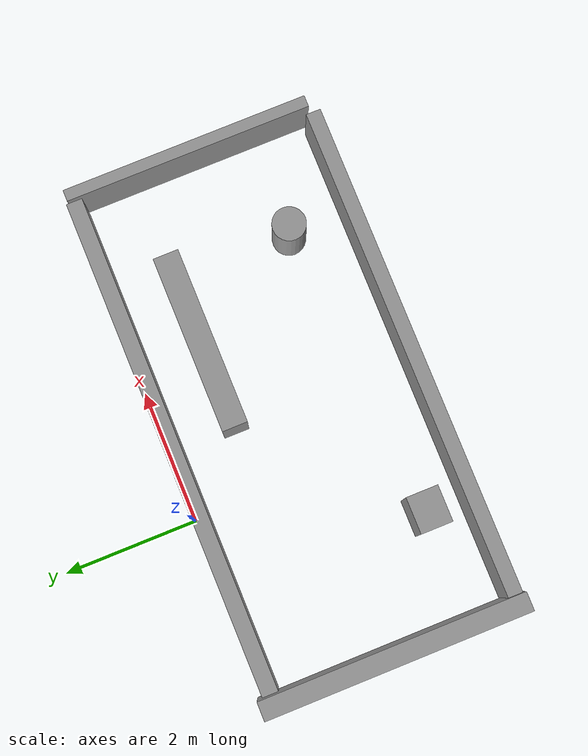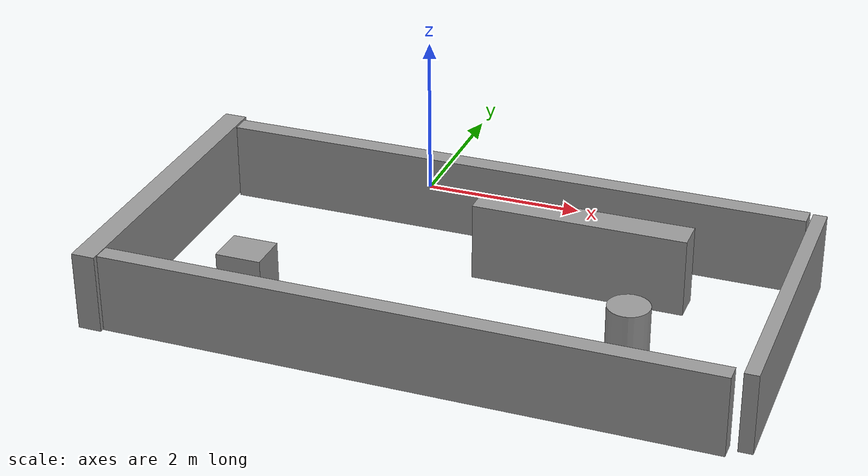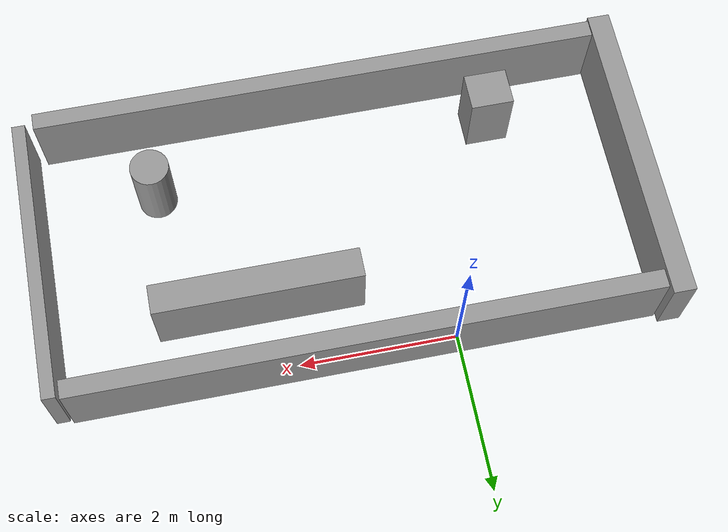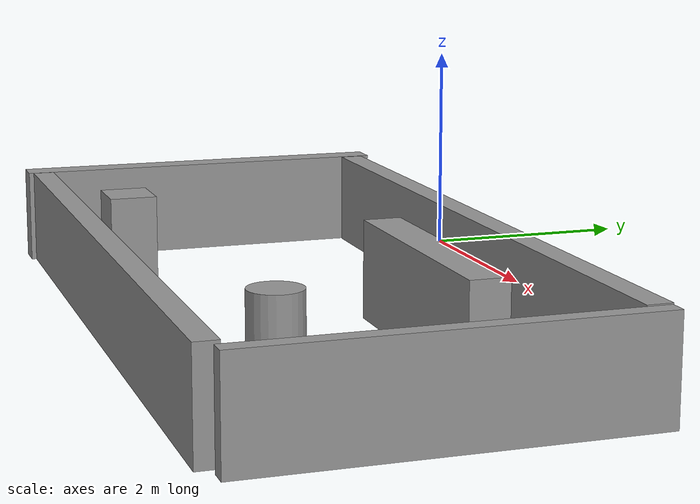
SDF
<?xml version='1.0'?>
<sdf version='1.7'>
  <model name='ysolve_bot_world'>
    <link name='link'>
      <inertial>
        <mass>1.68528</mass>
        <inertia>
          <ixx>0.147466</ixx>
          <ixy>0</ixy>
          <ixz>0</ixz>
          <iyy>8.11562</iyy>
          <iyz>0</iyz>
          <izz>7.9822</izz>
        </inertia>
        <pose>0 0 0 0 -0 0</pose>
      </inertial>
      <self_collide>0</self_collide>
      <enable_wind>0</enable_wind>
      <kinematic>0</kinematic>
      <pose>1.09176 -3.7966 -0 0 -0 0</pose>
      <gravity>0</gravity>
      <visual name='visual'>
        <geometry>
          <box>
            <size>7.53572 0.223666 1</size>
          </box>
        </geometry>
        <material>
          <script>
            <name>Gazebo/Grey</name>
            <uri>file://media/materials/scripts/gazebo.material</uri>
          </script>
          <shader type='pixel'>
            <normal_map>__default__</normal_map>
          </shader>
          <ambient>0.3 0.3 0.3 1</ambient>
          <diffuse>0.7 0.7 0.7 1</diffuse>
          <specular>0.01 0.01 0.01 1</specular>
          <emissive>0 0 0 1</emissive>
        </material>
        <pose>0 0 0 0 -0 0</pose>
        <transparency>0</transparency>
        <cast_shadows>1</cast_shadows>
      </visual>
      <collision name='collision'>
        <laser_retro>0</laser_retro>
        <max_contacts>10</max_contacts>
        <pose>0 0 0 0 -0 0</pose>
        <geometry>
          <box>
            <size>7.53572 0.223666 1</size>
          </box>
        </geometry>
        <surface>
          <friction>
            <ode>
              <mu>1</mu>
              <mu2>1</mu2>
              <fdir1>0 0 0</fdir1>
              <slip1>0</slip1>
              <slip2>0</slip2>
            </ode>
            <torsional>
              <coefficient>1</coefficient>
              <patch_radius>0</patch_radius>
              <surface_radius>0</surface_radius>
              <use_patch_radius>1</use_patch_radius>
              <ode>
                <slip>0</slip>
              </ode>
            </torsional>
          </friction>
          <bounce>
            <restitution_coefficient>0</restitution_coefficient>
            <threshold>1e+06</threshold>
          </bounce>
          <contact>
            <collide_without_contact>0</collide_without_contact>
            <collide_without_contact_bitmask>1</collide_without_contact_bitmask>
            <collide_bitmask>1</collide_bitmask>
            <ode>
              <soft_cfm>0</soft_cfm>
              <soft_erp>0.2</soft_erp>
              <kp>1e+13</kp>
              <kd>1</kd>
              <max_vel>0.01</max_vel>
              <min_depth>0</min_depth>
            </ode>
            <bullet>
              <split_impulse>1</split_impulse>
              <split_impulse_penetration_threshold>-0.01</split_impulse_penetration_threshold>
              <soft_cfm>0</soft_cfm>
              <soft_erp>0.2</soft_erp>
              <kp>1e+13</kp>
              <kd>1</kd>
            </bullet>
          </contact>
        </surface>
      </collision>
    </link>
    <link name='link_0'>
      <inertial>
        <mass>1.20569</mass>
        <inertia>
          <ixx>1.77707</ixx>
          <ixy>0</ixy>
          <ixz>0</ixz>
          <iyy>0.109226</iyy>
          <iyz>0</iyz>
          <izz>1.68535</izz>
        </inertia>
        <pose>0 0 0 0 -0 0</pose>
      </inertial>
      <pose>-2.83232 -1.91567 0 0 -0 0</pose>
      <gravity>0</gravity>
      <self_collide>0</self_collide>
      <kinematic>0</kinematic>
      <enable_wind>0</enable_wind>
      <visual name='visual'>
        <pose>0 0 0 0 -0 0</pose>
        <geometry>
          <box>
            <size>0.295132 4.08495 1</size>
          </box>
        </geometry>
        <material>
          <lighting>1</lighting>
          <script>
            <uri>file://media/materials/scripts/gazebo.material</uri>
            <name>Gazebo/Grey</name>
          </script>
          <shader type='pixel'>
            <normal_map>__default__</normal_map>
          </shader>
          <ambient>0.3 0.3 0.3 1</ambient>
          <diffuse>0.7 0.7 0.7 1</diffuse>
          <specular>0.01 0.01 0.01 1</specular>
          <emissive>0 0 0 1</emissive>
        </material>
        <transparency>0</transparency>
        <cast_shadows>1</cast_shadows>
      </visual>
      <collision name='collision'>
        <laser_retro>0</laser_retro>
        <max_contacts>10</max_contacts>
        <pose>0 0 0 0 -0 0</pose>
        <geometry>
          <box>
            <size>0.295132 4.08495 1</size>
          </box>
        </geometry>
        <surface>
          <friction>
            <ode>
              <mu>1</mu>
              <mu2>1</mu2>
              <fdir1>0 0 0</fdir1>
              <slip1>0</slip1>
              <slip2>0</slip2>
            </ode>
            <torsional>
              <coefficient>1</coefficient>
              <patch_radius>0</patch_radius>
              <surface_radius>0</surface_radius>
              <use_patch_radius>1</use_patch_radius>
              <ode>
                <slip>0</slip>
              </ode>
            </torsional>
          </friction>
          <bounce>
            <restitution_coefficient>0</restitution_coefficient>
            <threshold>1e+06</threshold>
          </bounce>
          <contact>
            <collide_without_contact>0</collide_without_contact>
            <collide_without_contact_bitmask>1</collide_without_contact_bitmask>
            <collide_bitmask>1</collide_bitmask>
            <ode>
              <soft_cfm>0</soft_cfm>
              <soft_erp>0.2</soft_erp>
              <kp>1e+13</kp>
              <kd>1</kd>
              <max_vel>0.01</max_vel>
              <min_depth>0</min_depth>
            </ode>
            <bullet>
              <split_impulse>1</split_impulse>
              <split_impulse_penetration_threshold>-0.01</split_impulse_penetration_threshold>
              <soft_cfm>0</soft_cfm>
              <soft_erp>0.2</soft_erp>
              <kp>1e+13</kp>
              <kd>1</kd>
            </bullet>
          </contact>
        </surface>
      </collision>
    </link>
    <link name='link_0_clone'>
      <inertial>
        <mass>0.650328</mass>
        <inertia>
          <ixx>0.824195</ixx>
          <ixy>0</ixy>
          <ixz>0</ixz>
          <iyy>0.0558074</iyy>
          <iyz>0</iyz>
          <izz>0.771614</izz>
        </inertia>
        <pose>0 0 0 0 -0 0</pose>
      </inertial>
      <pose>5.04888 -1.88197 0 0 -0 0</pose>
      <gravity>0</gravity>
      <self_collide>0</self_collide>
      <kinematic>0</kinematic>
      <enable_wind>0</enable_wind>
      <visual name='visual'>
        <pose>0 0 0 0 -0 0</pose>
        <geometry>
          <box>
            <size>0.17254 3.76938 1</size>
          </box>
        </geometry>
        <material>
          <lighting>1</lighting>
          <script>
            <uri>file://media/materials/scripts/gazebo.material</uri>
            <name>Gazebo/Grey</name>
          </script>
          <shader type='pixel'>
            <normal_map>__default__</normal_map>
          </shader>
          <ambient>0.3 0.3 0.3 1</ambient>
          <diffuse>0.7 0.7 0.7 1</diffuse>
          <specular>0.01 0.01 0.01 1</specular>
          <emissive>0 0 0 1</emissive>
        </material>
        <transparency>0</transparency>
        <cast_shadows>1</cast_shadows>
      </visual>
      <collision name='collision'>
        <laser_retro>0</laser_retro>
        <max_contacts>10</max_contacts>
        <pose>0 0 0 0 -0 0</pose>
        <geometry>
          <box>
            <size>0.17254 3.76938 1</size>
          </box>
        </geometry>
        <surface>
          <friction>
            <ode>
              <mu>1</mu>
              <mu2>1</mu2>
              <fdir1>0 0 0</fdir1>
              <slip1>0</slip1>
              <slip2>0</slip2>
            </ode>
            <torsional>
              <coefficient>1</coefficient>
              <patch_radius>0</patch_radius>
              <surface_radius>0</surface_radius>
              <use_patch_radius>1</use_patch_radius>
              <ode>
                <slip>0</slip>
              </ode>
            </torsional>
          </friction>
          <bounce>
            <restitution_coefficient>0</restitution_coefficient>
            <threshold>1e+06</threshold>
          </bounce>
          <contact>
            <collide_without_contact>0</collide_without_contact>
            <collide_without_contact_bitmask>1</collide_without_contact_bitmask>
            <collide_bitmask>1</collide_bitmask>
            <ode>
              <soft_cfm>0</soft_cfm>
              <soft_erp>0.2</soft_erp>
              <kp>1e+13</kp>
              <kd>1</kd>
              <max_vel>0.01</max_vel>
              <min_depth>0</min_depth>
            </ode>
            <bullet>
              <split_impulse>1</split_impulse>
              <split_impulse_penetration_threshold>-0.01</split_impulse_penetration_threshold>
              <soft_cfm>0</soft_cfm>
              <soft_erp>0.2</soft_erp>
              <kp>1e+13</kp>
              <kd>1</kd>
            </bullet>
          </contact>
        </surface>
      </collision>
    </link>
    <link name='link_12'>
      <inertial>
        <mass>0.259313</mass>
        <inertia>
          <ixx>0.0258122</ixx>
          <ixy>0</ixy>
          <ixz>0</ixz>
          <iyy>0.0258122</iyy>
          <iyz>0</iyz>
          <izz>0.00840554</izz>
        </inertia>
        <pose>0 0 0 0 -0 0</pose>
      </inertial>
      <pose>3.45068 -2.84834 0 0 -0 0</pose>
      <visual name='visual'>
        <pose>0 0 0 0 -0 0</pose>
        <geometry>
          <cylinder>
            <radius>0.254616</radius>
            <length>1</length>
          </cylinder>
        </geometry>
        <material>
          <lighting>1</lighting>
          <script>
            <uri>file://media/materials/scripts/gazebo.material</uri>
            <name>Gazebo/Grey</name>
          </script>
          <shader type='pixel'/>
        </material>
        <transparency>0</transparency>
        <cast_shadows>1</cast_shadows>
      </visual>
      <collision name='collision'>
        <laser_retro>0</laser_retro>
        <max_contacts>10</max_contacts>
        <pose>0 0 0 0 -0 0</pose>
        <geometry>
          <cylinder>
            <radius>0.254616</radius>
            <length>1</length>
          </cylinder>
        </geometry>
        <surface>
          <friction>
            <ode>
              <mu>1</mu>
              <mu2>1</mu2>
              <fdir1>0 0 0</fdir1>
              <slip1>0</slip1>
              <slip2>0</slip2>
            </ode>
            <torsional>
              <coefficient>1</coefficient>
              <patch_radius>0</patch_radius>
              <surface_radius>0</surface_radius>
              <use_patch_radius>1</use_patch_radius>
              <ode>
                <slip>0</slip>
              </ode>
            </torsional>
          </friction>
          <bounce>
            <restitution_coefficient>0</restitution_coefficient>
            <threshold>1e+06</threshold>
          </bounce>
          <contact>
            <collide_without_contact>0</collide_without_contact>
            <collide_without_contact_bitmask>1</collide_without_contact_bitmask>
            <collide_bitmask>1</collide_bitmask>
            <ode>
              <soft_cfm>0</soft_cfm>
              <soft_erp>0.2</soft_erp>
              <kp>1e+13</kp>
              <kd>1</kd>
              <max_vel>0.01</max_vel>
              <min_depth>0</min_depth>
            </ode>
            <bullet>
              <split_impulse>1</split_impulse>
              <split_impulse_penetration_threshold>-0.01</split_impulse_penetration_threshold>
              <soft_cfm>0</soft_cfm>
              <soft_erp>0.2</soft_erp>
              <kp>1e+13</kp>
              <kd>1</kd>
            </bullet>
          </contact>
        </surface>
      </collision>
    </link>
    <link name='link_9'>
      <inertial>
        <mass>0.274796</mass>
        <inertia>
          <ixx>0.0283808</ixx>
          <ixy>0</ixy>
          <ixz>0</ixz>
          <iyy>0.0301242</iyy>
          <iyz>0</iyz>
          <izz>0.0127056</izz>
        </inertia>
        <pose>0 0 0 0 -0 0</pose>
      </inertial>
      <pose>-1.11357 -3.13858 0 0 -0 0</pose>
      <visual name='visual'>
        <pose>0 0 0 0 -0 0</pose>
        <geometry>
          <box>
            <size>0.561682 0.489237 1</size>
          </box>
        </geometry>
        <material>
          <lighting>1</lighting>
          <script>
            <uri>file://media/materials/scripts/gazebo.material</uri>
            <name>Gazebo/Grey</name>
          </script>
          <shader type='pixel'/>
        </material>
        <transparency>0</transparency>
        <cast_shadows>1</cast_shadows>
      </visual>
      <collision name='collision'>
        <laser_retro>0</laser_retro>
        <max_contacts>10</max_contacts>
        <pose>0 0 0 0 -0 0</pose>
        <geometry>
          <box>
            <size>0.561682 0.489237 1</size>
          </box>
        </geometry>
        <surface>
          <friction>
            <ode>
              <mu>1</mu>
              <mu2>1</mu2>
              <fdir1>0 0 0</fdir1>
              <slip1>0</slip1>
              <slip2>0</slip2>
            </ode>
            <torsional>
              <coefficient>1</coefficient>
              <patch_radius>0</patch_radius>
              <surface_radius>0</surface_radius>
              <use_patch_radius>1</use_patch_radius>
              <ode>
                <slip>0</slip>
              </ode>
            </torsional>
          </friction>
          <bounce>
            <restitution_coefficient>0</restitution_coefficient>
            <threshold>1e+06</threshold>
          </bounce>
          <contact>
            <collide_without_contact>0</collide_without_contact>
            <collide_without_contact_bitmask>1</collide_without_contact_bitmask>
            <collide_bitmask>1</collide_bitmask>
            <ode>
              <soft_cfm>0</soft_cfm>
              <soft_erp>0.2</soft_erp>
              <kp>1e+13</kp>
              <kd>1</kd>
              <max_vel>0.01</max_vel>
              <min_depth>0</min_depth>
            </ode>
            <bullet>
              <split_impulse>1</split_impulse>
              <split_impulse_penetration_threshold>-0.01</split_impulse_penetration_threshold>
              <soft_cfm>0</soft_cfm>
              <soft_erp>0.2</soft_erp>
              <kp>1e+13</kp>
              <kd>1</kd>
            </bullet>
          </contact>
        </surface>
      </collision>
    </link>
    <link name='link_9_clone'>
      <inertial>
        <mass>1.04135</mass>
        <inertia>
          <ixx>0.0997567</ixx>
          <ixy>0</ixy>
          <ixz>0</ixz>
          <iyy>0.716039</iyy>
          <iyz>0</iyz>
          <izz>0.642237</izz>
        </inertia>
        <pose>0 0 0 0 -0 0</pose>
      </inertial>
      <pose>2.35636 -1.02679 0 0 -0 0</pose>
      <visual name='visual'>
        <pose>0 0 0 0 -0 0</pose>
        <geometry>
          <box>
            <size>2.69282 0.386713 1</size>
          </box>
        </geometry>
        <material>
          <lighting>1</lighting>
          <script>
            <uri>file://media/materials/scripts/gazebo.material</uri>
            <name>Gazebo/Grey</name>
          </script>
          <shader type='pixel'/>
        </material>
        <transparency>0</transparency>
        <cast_shadows>1</cast_shadows>
      </visual>
      <collision name='collision'>
        <laser_retro>0</laser_retro>
        <max_contacts>10</max_contacts>
        <pose>0 0 0 0 -0 0</pose>
        <geometry>
          <box>
            <size>2.69282 0.386713 1</size>
          </box>
        </geometry>
        <surface>
          <friction>
            <ode>
              <mu>1</mu>
              <mu2>1</mu2>
              <fdir1>0 0 0</fdir1>
              <slip1>0</slip1>
              <slip2>0</slip2>
            </ode>
            <torsional>
              <coefficient>1</coefficient>
              <patch_radius>0</patch_radius>
              <surface_radius>0</surface_radius>
              <use_patch_radius>1</use_patch_radius>
              <ode>
                <slip>0</slip>
              </ode>
            </torsional>
          </friction>
          <bounce>
            <restitution_coefficient>0</restitution_coefficient>
            <threshold>1e+06</threshold>
          </bounce>
          <contact>
            <collide_without_contact>0</collide_without_contact>
            <collide_without_contact_bitmask>1</collide_without_contact_bitmask>
            <collide_bitmask>1</collide_bitmask>
            <ode>
              <soft_cfm>0</soft_cfm>
              <soft_erp>0.2</soft_erp>
              <kp>1e+13</kp>
              <kd>1</kd>
              <max_vel>0.01</max_vel>
              <min_depth>0</min_depth>
            </ode>
            <bullet>
              <split_impulse>1</split_impulse>
              <split_impulse_penetration_threshold>-0.01</split_impulse_penetration_threshold>
              <soft_cfm>0</soft_cfm>
              <soft_erp>0.2</soft_erp>
              <kp>1e+13</kp>
              <kd>1</kd>
            </bullet>
          </contact>
        </surface>
      </collision>
    </link>
    <link name='link_clone'>
      <inertial>
        <mass>1.84147</mass>
        <inertia>
          <ixx>0.162513</ixx>
          <ixy>0</ixy>
          <ixz>0</ixz>
          <iyy>8.96955</iyy>
          <iyz>0</iyz>
          <izz>8.82516</izz>
        </inertia>
        <pose>0 0 0 0 -0 0</pose>
      </inertial>
      <self_collide>0</self_collide>
      <enable_wind>0</enable_wind>
      <kinematic>0</kinematic>
      <pose>1.13035 -0.087224 -0 0 -0 0</pose>
      <gravity>0</gravity>
      <visual name='visual'>
        <geometry>
          <box>
            <size>7.5796 0.242941 1</size>
          </box>
        </geometry>
        <material>
          <script>
            <name>Gazebo/Grey</name>
            <uri>file://media/materials/scripts/gazebo.material</uri>
          </script>
          <shader type='pixel'>
            <normal_map>__default__</normal_map>
          </shader>
          <ambient>0.3 0.3 0.3 1</ambient>
          <diffuse>0.7 0.7 0.7 1</diffuse>
          <specular>0.01 0.01 0.01 1</specular>
          <emissive>0 0 0 1</emissive>
        </material>
        <pose>0 0 0 0 -0 0</pose>
        <transparency>0</transparency>
        <cast_shadows>1</cast_shadows>
      </visual>
      <collision name='collision'>
        <laser_retro>0</laser_retro>
        <max_contacts>10</max_contacts>
        <pose>0 0 0 0 -0 0</pose>
        <geometry>
          <box>
            <size>7.5796 0.242941 1</size>
          </box>
        </geometry>
        <surface>
          <friction>
            <ode>
              <mu>1</mu>
              <mu2>1</mu2>
              <fdir1>0 0 0</fdir1>
              <slip1>0</slip1>
              <slip2>0</slip2>
            </ode>
            <torsional>
              <coefficient>1</coefficient>
              <patch_radius>0</patch_radius>
              <surface_radius>0</surface_radius>
              <use_patch_radius>1</use_patch_radius>
              <ode>
                <slip>0</slip>
              </ode>
            </torsional>
          </friction>
          <bounce>
            <restitution_coefficient>0</restitution_coefficient>
            <threshold>1e+06</threshold>
          </bounce>
          <contact>
            <collide_without_contact>0</collide_without_contact>
            <collide_without_contact_bitmask>1</collide_without_contact_bitmask>
            <collide_bitmask>1</collide_bitmask>
            <ode>
              <soft_cfm>0</soft_cfm>
              <soft_erp>0.2</soft_erp>
              <kp>1e+13</kp>
              <kd>1</kd>
              <max_vel>0.01</max_vel>
              <min_depth>0</min_depth>
            </ode>
            <bullet>
              <split_impulse>1</split_impulse>
              <split_impulse_penetration_threshold>-0.01</split_impulse_penetration_threshold>
              <soft_cfm>0</soft_cfm>
              <soft_erp>0.2</soft_erp>
              <kp>1e+13</kp>
              <kd>1</kd>
            </bullet>
          </contact>
        </surface>
      </collision>
    </link>
    <static>0</static>
    <allow_auto_disable>1</allow_auto_disable>
  </model>
</sdf>
